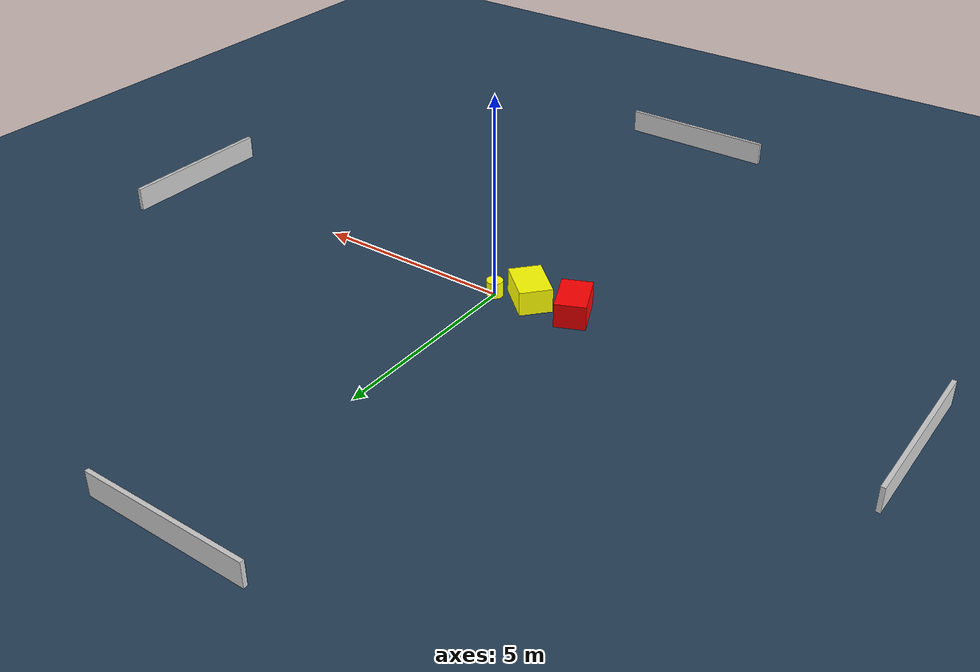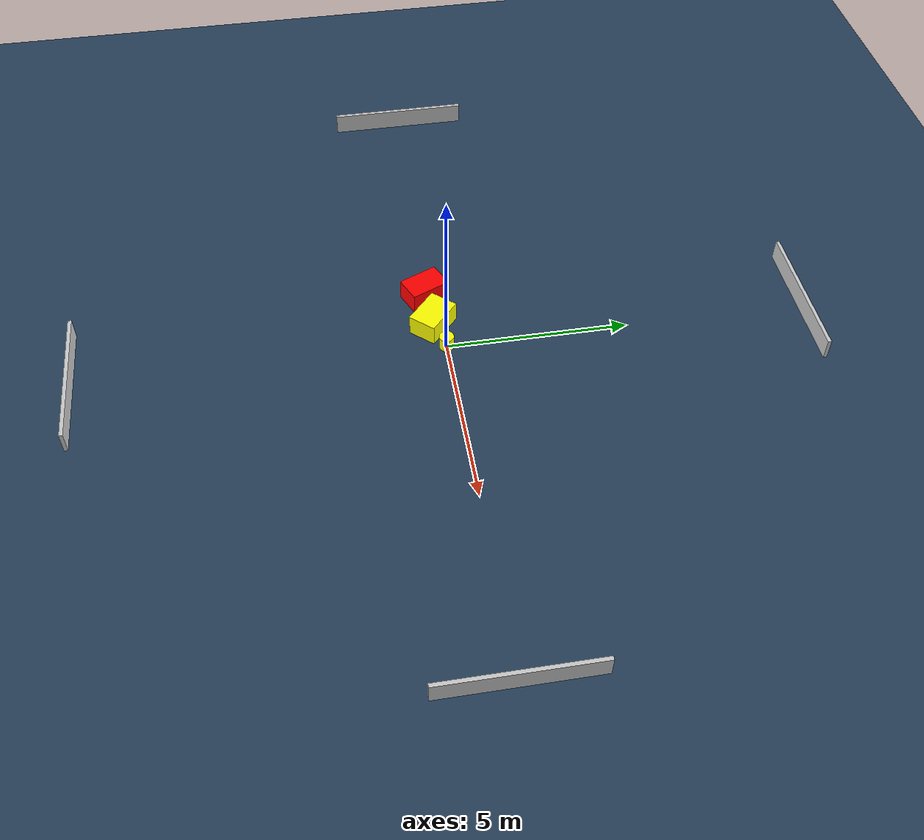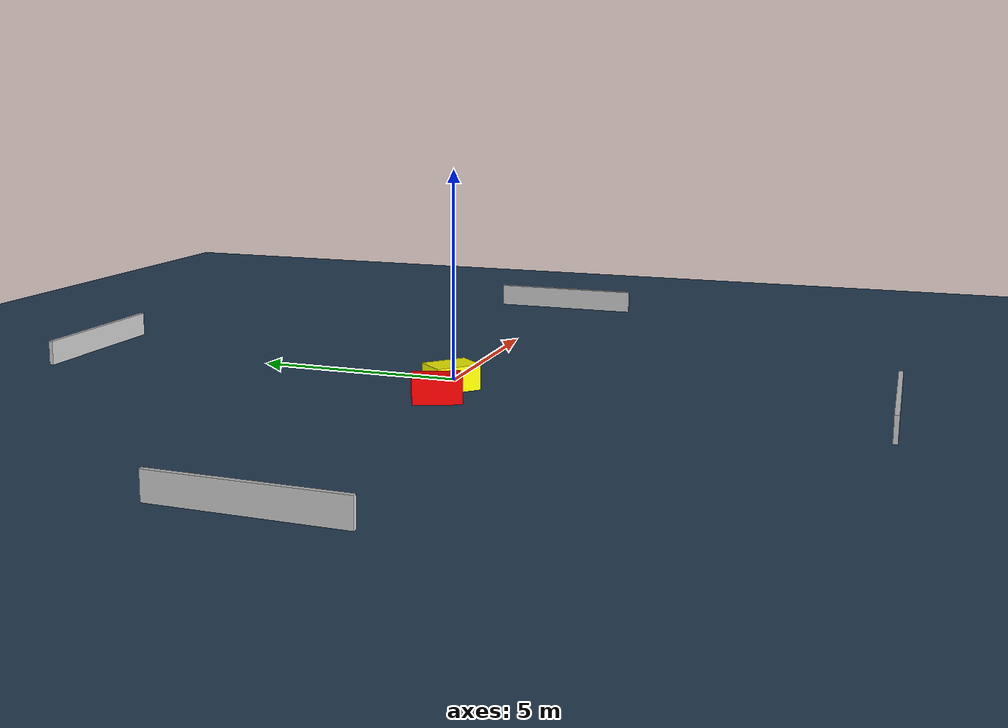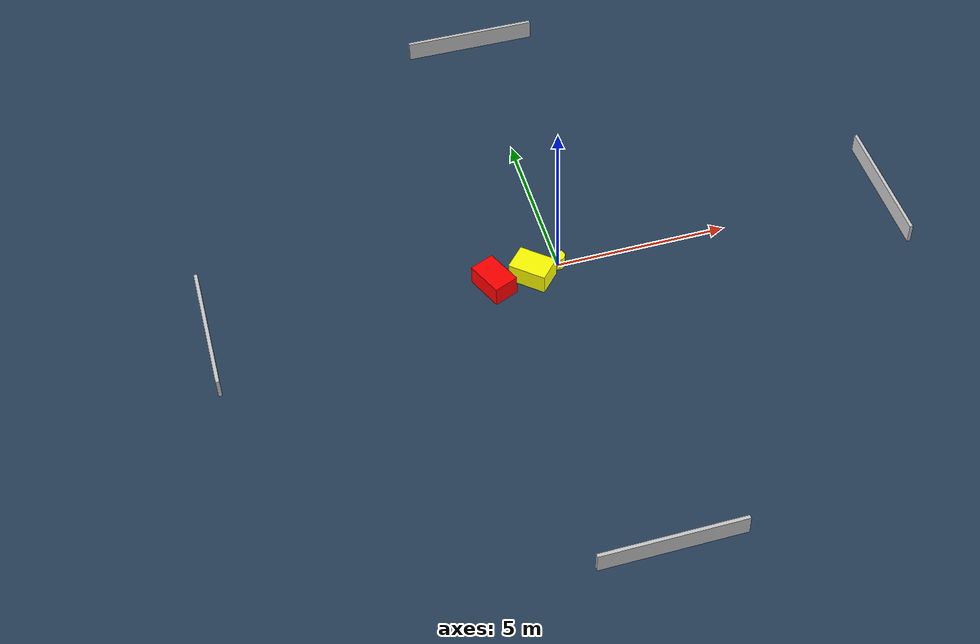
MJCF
<?xml version="1.0" ?>
<mujoco model="generated_environment">
  <option timestep="0.01" integrator="RK4" cone="elliptic"/>
  <default>
    <geom density="1"/>
  </default>
  <asset>
    <texture builtin="gradient" height="3072" name="skybox" rgb1="0.3 0.5 0.7" rgb2="0 0 0" type="skybox" width="512"/>
    <texture builtin="checker" height="300" name="groundplane" rgb1="0.2 0.3 0.4" rgb2="0.1 0.2 0.3" type="2d" width="300"/>
    <material name="groundplane" reflectance="0.2" texrepeat="5 5" texture="groundplane"/>
  </asset>
  <worldbody>
    <light dir="0 0 -1" directional="true" pos="0 0 1.5"/>
    <geom condim="3" friction="0.5 0.005 0.001" material="groundplane" name="floor" pos="0 0 0" size="0 0 0.05" type="plane"/>
    <body name="walls">
      <geom name="wall_1" condim="4" pos="-10.0 0.0 0.3" rgba="0.800000011920929 0.800000011920929 0.800000011920929 1.0" size="0.05 2.0 0.3" type="box"/>
      <geom name="wall_2" condim="4" pos="10.0 0.0 0.3" rgba="0.800000011920929 0.800000011920929 0.800000011920929 1.0" size="0.05 2.0 0.3" type="box"/>
      <geom name="wall_3" condim="4" pos="0.0 -10.0 0.3" rgba="0.800000011920929 0.800000011920929 0.800000011920929 1.0" size="2.0 0.05 0.3" type="box"/>
      <geom name="wall_4" condim="4" pos="0.0 10.0 0.3" rgba="0.800000011920929 0.800000011920929 0.800000011920929 1.0" size="2.0 0.05 0.3" type="box"/>
    </body>
    <body name="robot">
      <joint name="joint_x" type="slide" pos="0 0 0" axis="1 0 0"/>
      <joint name="joint_y" type="slide" pos="0 0 0" axis="0 1 0"/>
      <geom name="robot" type="cylinder" pos="0.0 0.0 0.2" size="0.2 0.2 0.0" mass="5.0" friction="1.0 0.005 0.0001" condim="4" rgba="1.0 1.0 0.0 1.0"/>
    </body>
    <body name="obstacle_1_movable">
      <geom name="obstacle_1_movable" condim="4" pos="-0.8270109146397441 -0.24529939413010926 0.3" euler="0 0 138.3775844468263" friction="0.0 0.005 0.001" rgba="1.0 1.0 0.0 1.0" size="0.5596322626206196 0.39675146999660327 0.3" type="box" mass="0.1"/>
      <joint type="free"/>
    </body>
    <body name="obstacle_2_static">
      <geom name="obstacle_2_static" condim="4" pos="-1.9683782438149737 -0.3133660337592581 0.3" euler="0 0 203.5574995480354" friction="0.0 0.005 0.001" rgba="1.0 0.0 0.0 1.0" size="0.3692723193767402 0.560729318950375 0.3" type="box"/>
    </body>
  </worldbody>
  <actuator>
    <motor name="actuator_x" joint="joint_x" gear="1" ctrlrange="-1 1"/>
    <motor name="actuator_y" joint="joint_y" gear="1" ctrlrange="-1 1"/>
  </actuator>
</mujoco>
